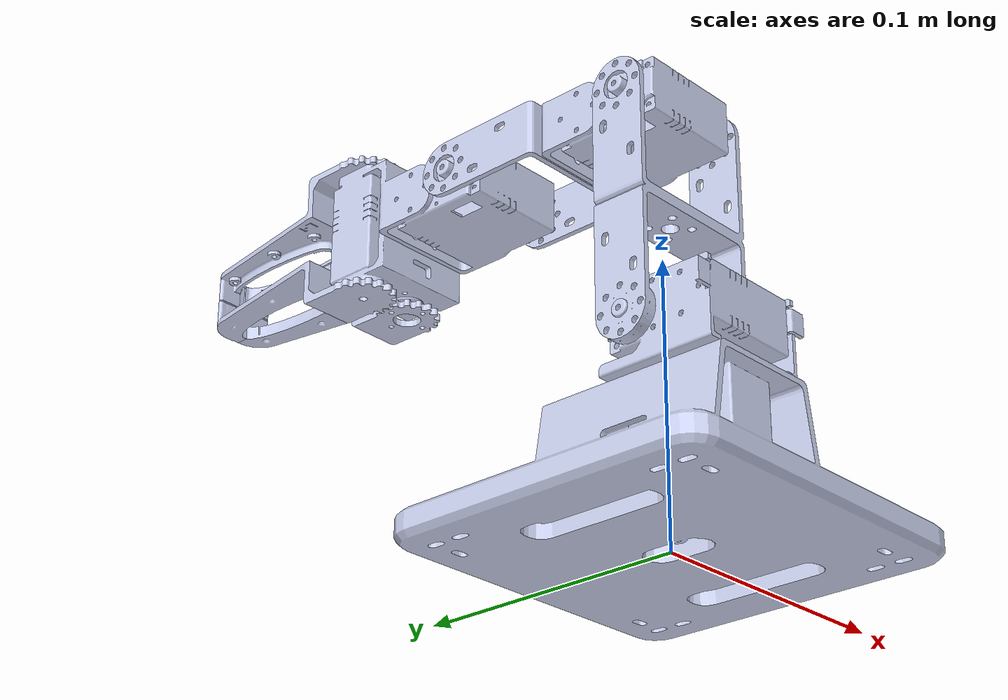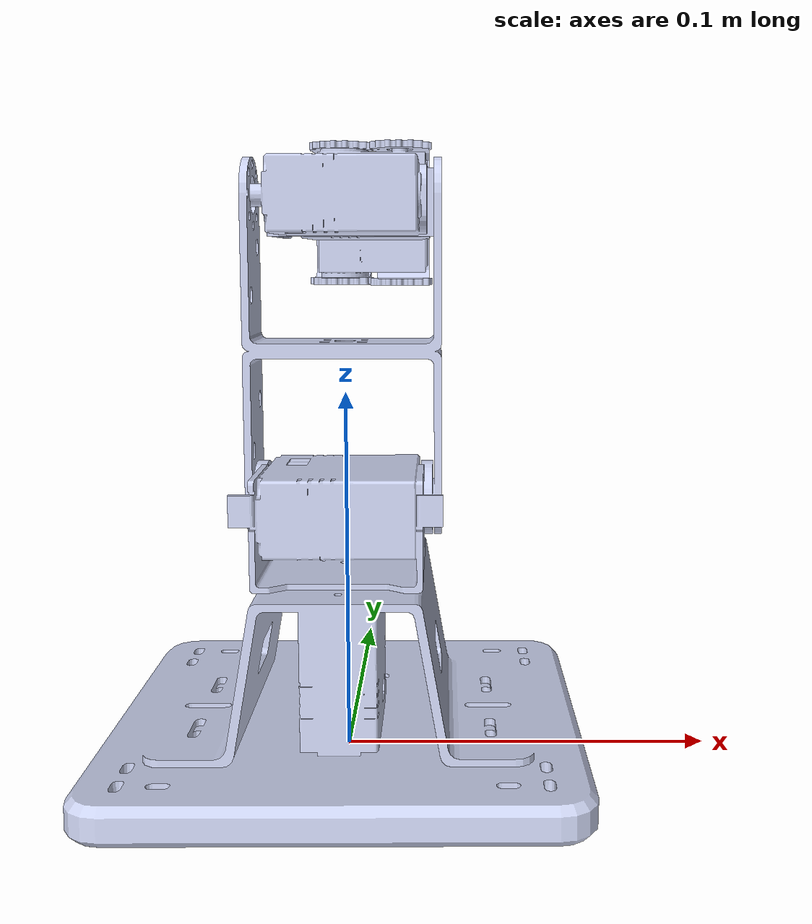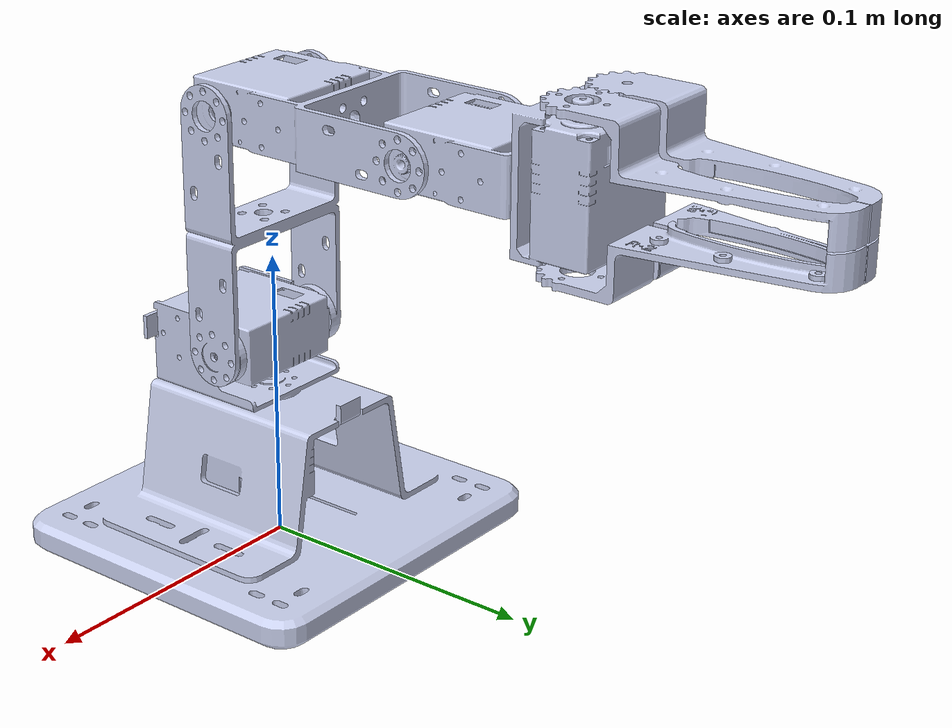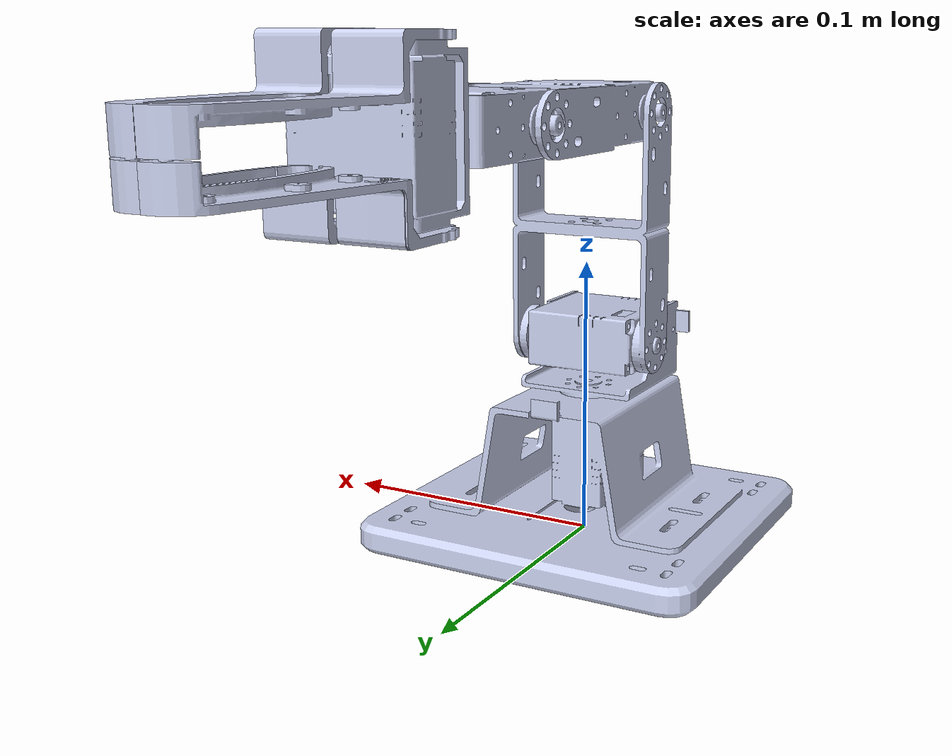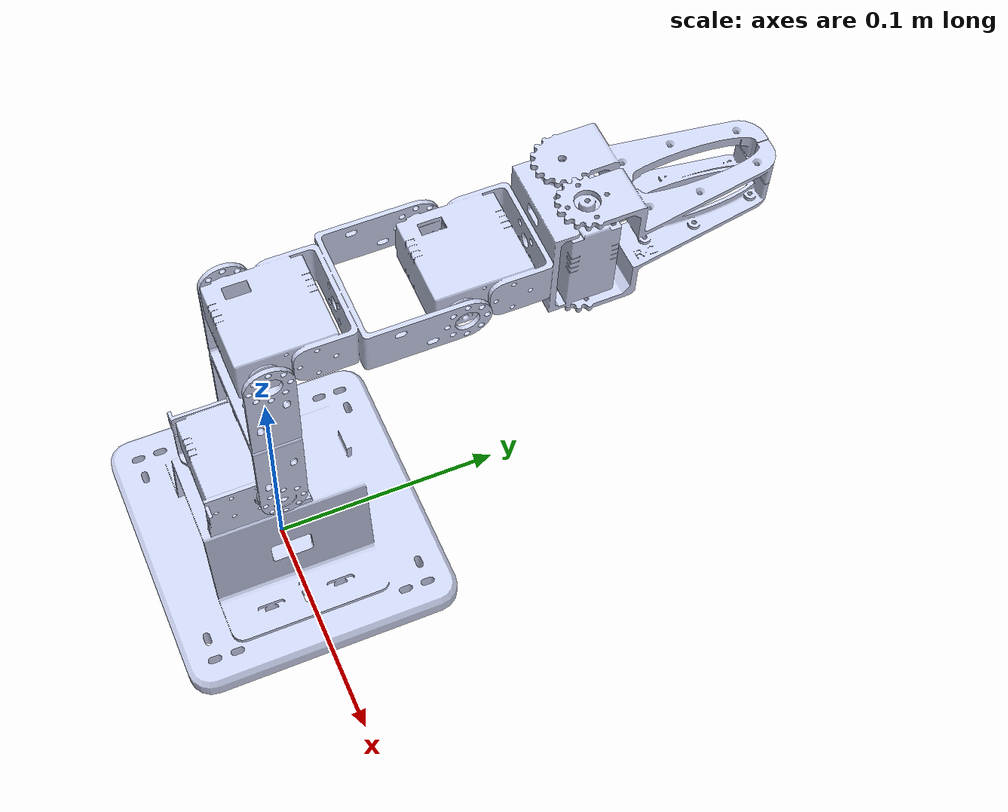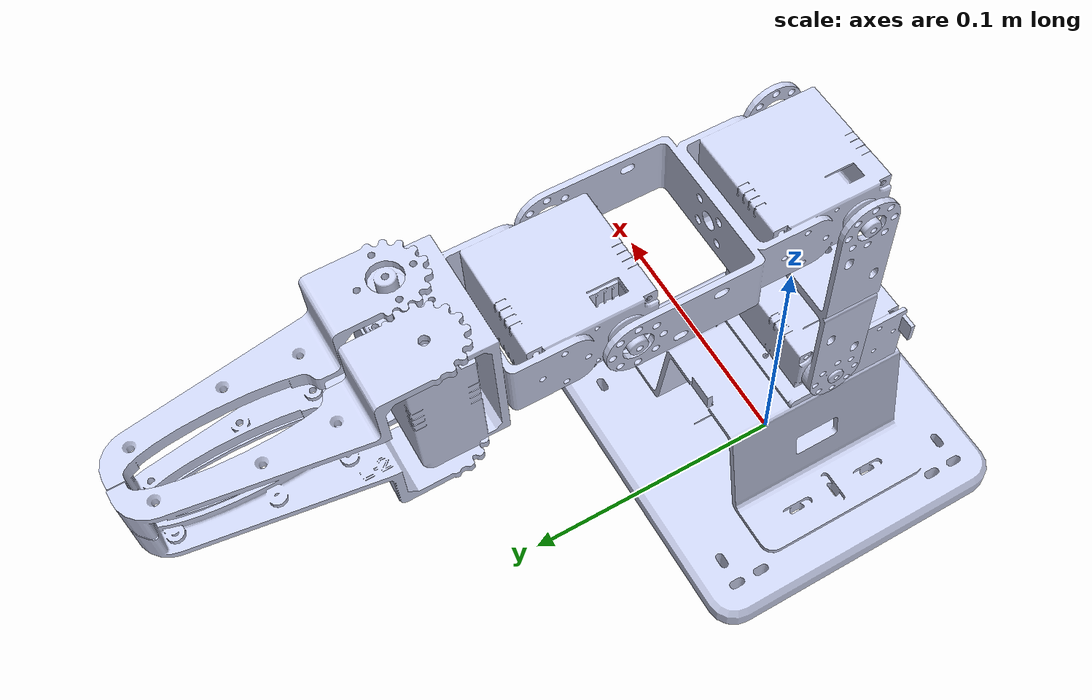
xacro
<?xml version="1.0"?>
<robot xmlns:xacro="http://www.ros.org/wiki/xacro" name="are1018_urdf">
    <xacro:arg name="initial_positions_file" default="initial_positions.yaml" />

    <!-- Import are1018_urdf urdf file -->
    <xacro:include filename="$(find are1018_urdf)/urdf/arm_urdf_1018.urdf" />

    <!-- Import control_xacro -->
    <xacro:include filename="are1018_urdf.ros2_control.xacro" />

    <xacro:are1018_urdf_ros2_control name="FakeSystem" initial_positions_file="$(arg initial_positions_file)"/>

</robot>

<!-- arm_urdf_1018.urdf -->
<robot
  name="are1018_urdf">
  <link
    name="base_link">
    <inertial>
      <origin
        xyz="6.91778333542455E-09 -0.000987638055765809 0.00969950688294337"
        rpy="0 0 0" />
      <mass
        value="0.170234591037879" />
      <inertia
        ixx="0.000190344867929517"
        ixy="-1.49585044621151E-11"
        ixz="-2.87752206040831E-12"
        iyy="0.000209895117595717"
        iyz="-4.25280510149574E-08"
        izz="0.000385505347421722" />
    </inertial>
    <visual>
      <origin
        xyz="0 0 0"
        rpy="0 0 0" />
      <geometry>
        <mesh
          filename="package://are1018_urdf/meshes/visual/base_link.STL" />
      </geometry>
      <material
        name="">
        <color
          rgba="0.792156862745098 0.819607843137255 0.933333333333333 1" />
      </material>
    </visual>
    <collision>
      <origin
        xyz="0 0 0"
        rpy="0 0 0" />
      <geometry>
        <mesh
          filename="package://are1018_urdf/meshes/visual/base_link.STL" />
      </geometry>
    </collision>
  </link>
  <link
    name="link0">
    <inertial>
      <origin
        xyz="-0.000148686471246822 -0.0108477499496043 0.0127257064637936"
        rpy="0 0 0" />
      <mass
        value="0.0134533721751118" />
      <inertia
        ixx="2.84098753200003E-06"
        ixy="-3.43071595594812E-09"
        ixz="5.30738424474361E-11"
        iyy="2.18307388098522E-06"
        iyz="2.00194190669691E-07"
        izz="3.55990656348061E-06" />
    </inertial>
    <visual>
      <origin
        xyz="0 0 0"
        rpy="0 0 0" />
      <geometry>
        <mesh
          filename="package://are1018_urdf/meshes/visual/link0.STL" />
      </geometry>
      <material
        name="">
        <color
          rgba="0.792156862745098 0.819607843137255 0.933333333333333 1" />
      </material>
    </visual>
    <collision>
      <origin
        xyz="0 0 0"
        rpy="0 0 0" />
      <geometry>
        <mesh
          filename="package://are1018_urdf/meshes/visual/link0.STL" />
      </geometry>
    </collision>
  </link>
  <joint
    name="joint0"
    type="revolute">
    <origin
      xyz="0 -0.0025386 0.05375"
      rpy="0 0 0" />
    <parent
      link="base_link" />
    <child
      link="link0" />
    <axis
      xyz="0 0 -1" />
    <limit
      lower="-2"
      upper="2"
      effort="100"
      velocity="1" />
  </joint>
  <link
    name="link1">
    <inertial>
      <origin
        xyz="-2.62658044619668E-09 -0.0345571058935115 0.0254946423103066"
        rpy="0 0 0" />
      <mass
        value="0.0120579589553567" />
      <inertia
        ixx="7.19129614481569E-06"
        ixy="-6.77986390248771E-09"
        ixz="7.78451970892812E-21"
        iyy="5.27353232807871E-06"
        iyz="-2.09008873732233E-19"
        izz="2.71342255945596E-06" />
    </inertial>
    <visual>
      <origin
        xyz="0 0 0"
        rpy="0 0 0" />
      <geometry>
        <mesh
          filename="package://are1018_urdf/meshes/visual/link1.STL" />
      </geometry>
      <material
        name="">
        <color
          rgba="0.792156862745098 0.819607843137255 0.933333333333333 1" />
      </material>
    </visual>
    <collision>
      <origin
        xyz="0 0 0"
        rpy="0 0 0" />
      <geometry>
        <mesh
          filename="package://are1018_urdf/meshes/visual/link1.STL" />
      </geometry>
    </collision>
  </link>
  <joint
    name="joint1"
    type="revolute">
    <origin
      xyz="0.02575 -0.00081639 0.017894"
      rpy="-1.5708 0 1.5708" />
    <parent
      link="link0" />
    <child
      link="link1" />
    <axis
      xyz="0 0 1" />
    <limit
      lower="-0.9"
      upper="1.5"
      effort="100"
      velocity="1" />
  </joint>
  <link
    name="link2">
    <inertial>
      <origin
        xyz="0.0265477568891185 5.89201840095477E-10 0.0209223131306843"
        rpy="0 0 0" />
      <mass
        value="0.0163235420272894" />
      <inertia
        ixx="4.24056894578294E-06"
        ixy="3.38988499063713E-09"
        ixz="-3.36881501952228E-09"
        iyy="6.33118981534796E-06"
        iyz="-4.63361240339478E-15"
        izz="3.44644530707849E-06" />
    </inertial>
    <visual>
      <origin
        xyz="0 0 0"
        rpy="0 0 0" />
      <geometry>
        <mesh
          filename="package://are1018_urdf/meshes/visual/link2.STL" />
      </geometry>
      <material
        name="">
        <color
          rgba="0.792156862745098 0.819607843137255 0.933333333333333 1" />
      </material>
    </visual>
    <collision>
      <origin
        xyz="0 0 0"
        rpy="0 0 0" />
      <geometry>
        <mesh
          filename="package://are1018_urdf/meshes/visual/link2.STL" />
      </geometry>
    </collision>
  </link>
  <joint
    name="joint2"
    type="revolute">
    <origin
      xyz="0 -0.081399 0.00495"
      rpy="0 0 0" />
    <parent
      link="link1" />
    <child
      link="link2" />
    <axis
      xyz="0 0 1" />
    <limit
      lower="-3.14"
      upper="0.9"
      effort="100"
      velocity="1" />
  </joint>
  <link
    name="link3">
    <inertial>
      <origin
        xyz="0.0338316024275452 -8.95955161251544E-05 0.0210634009704761"
        rpy="0 0 0" />
      <mass
        value="0.0266121463125793" />
      <inertia
        ixx="6.11128645475265E-06"
        ixy="-1.41339391021082E-12"
        ixz="-2.37103119931184E-07"
        iyy="5.9084006432695E-06"
        iyz="3.3192141647198E-09"
        izz="5.13314117763412E-06" />
    </inertial>
    <visual>
      <origin
        xyz="0 0 0"
        rpy="0 0 0" />
      <geometry>
        <mesh
          filename="package://are1018_urdf/meshes/visual/link3.STL" />
      </geometry>
      <material
        name="">
        <color
          rgba="0.792156862745098 0.819607843137255 0.933333333333333 1" />
      </material>
    </visual>
    <collision>
      <origin
        xyz="0 0 0"
        rpy="0 0 0" />
      <geometry>
        <mesh
          filename="package://are1018_urdf/meshes/visual/link3.STL" />
      </geometry>
    </collision>
  </link>
  <joint
    name="joint3"
    type="revolute">
    <origin
      xyz="0.077374 0 0"
      rpy="0 0 0" />
    <parent
      link="link2" />
    <child
      link="link3" />
    <axis
      xyz="0 0 1" />
    <limit
      lower="-2"
      upper="1.5"
      effort="100"
      velocity="1" />
  </joint>
  <link
    name="link4_0">
    <inertial>
      <origin
        xyz="0.0330511280658098 0.000272774366305122 -0.0266302052102281"
        rpy="0 0 0" />
      <mass
        value="0.0086970283014079" />
      <inertia
        ixx="7.84856466527092E-07"
        ixy="-3.87408492985789E-07"
        ixz="3.33950203699119E-08"
        iyy="7.03452850502723E-06"
        iyz="4.11048560512625E-09"
        izz="6.77200341516074E-06" />
    </inertial>
    <visual>
      <origin
        xyz="0 0 0"
        rpy="0 0 0" />
      <geometry>
        <mesh
          filename="package://are1018_urdf/meshes/visual/link4_0.STL" />
      </geometry>
      <material
        name="">
        <color
          rgba="0.792156862745098 0.819607843137255 0.933333333333333 1" />
      </material>
    </visual>
    <collision>
      <origin
        xyz="0 0 0"
        rpy="0 0 0" />
      <geometry>
        <mesh
          filename="package://are1018_urdf/meshes/visual/link4_0.STL" />
      </geometry>
    </collision>
  </link>
  <joint
    name="joint4_0"
    type="revolute">
    <origin
      xyz="0.053675 -0.0266 0.0103"
      rpy="1.5708 -0.01083 0" />
    <parent
      link="link3" />
    <child
      link="link4_0" />
    <axis
      xyz="0 0 -1" />
    <limit
      lower="0"
      upper="2"
      effort="100"
      velocity="1" />
  </joint>
  <link
    name="link4_1">
    <inertial>
      <origin
        xyz="0.031501735492723 -0.000501563206578234 -0.0314925232676157"
        rpy="0 0 0" />
      <mass
        value="0.0137369834582284" />
      <inertia
        ixx="1.23822723867815E-06"
        ixy="6.75819876123419E-07"
        ixz="-7.55665133610328E-07"
        iyy="1.12944276667532E-05"
        iyz="5.43864342855235E-08"
        izz="1.08894179820153E-05" />
    </inertial>
    <visual>
      <origin
        xyz="0 0 0"
        rpy="0 0 0" />
      <geometry>
        <mesh
          filename="package://are1018_urdf/meshes/visual/link4_1.STL" />
      </geometry>
      <material
        name="">
        <color
          rgba="0.792156862745098 0.819607843137255 0.933333333333333 1" />
      </material>
    </visual>
    <collision>
      <origin
        xyz="0 0 0"
        rpy="0 0 0" />
      <geometry>
        <mesh
          filename="package://are1018_urdf/meshes/visual/link4_1.STL" />
      </geometry>
    </collision>
  </link>
  <joint
    name="joint4_1"
    type="revolute">
    <origin
      xyz="0.053675 -0.0263 0.0323"
      rpy="1.5708 -0.010399 0" />
    <parent
      link="link3" />
    <child
      link="link4_1" />
    <axis
      xyz="0 0 -1" />
    <limit
      lower="-2"
      upper="0"
      effort="100"
      velocity="1" />
  </joint>
</robot>
